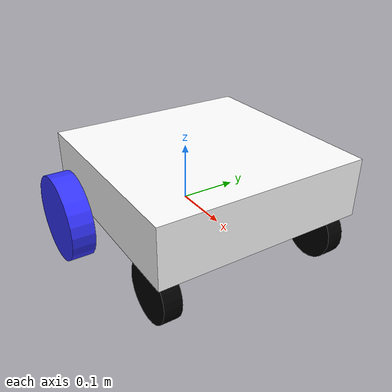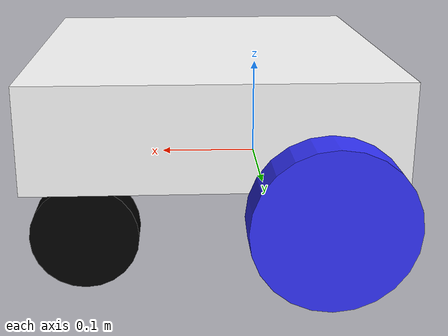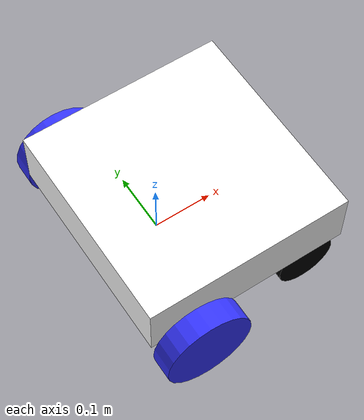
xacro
<?xml version="1.0"?>
<robot xmlns:xacro="http://www.ros.org/wiki/xacro" name="robot">

    <xacro:include filename="inertial_macros.xacro"/>

    <!-- Define materials -->
    <material name="white">
        <color rgba="1 1 1 1"/>
    </material>

    <material name="orange">
        <color rgba="1 0.3 0.1 1"/>
    </material>

    <material name="blue">
        <color rgba="0.2 0.2 1 1"/>
    </material>

    <material name="black">
        <color rgba="0 0 0 1"/>
    </material>

    <!-- BASE LINK -->
    <link name="base_link">
    </link>

    <!-- CHASSIS LINK -->
    <joint name="chassis_joint" type="fixed">
        <parent link="base_link"/>
        <child link="chassis"/>
        <origin xyz="-0.1 0 0"/>
    </joint>

    <link name="chassis">
        <visual>
            <origin xyz="0.15 0 0.07"/>
            <geometry>
                <box size="0.35 0.36 0.1"/>
            </geometry>
            <material name="white"/>
        </visual>
        <collision>
            <origin xyz="0.15 0 0.07"/>
            <geometry>
                <box size="0.35 0.36 0.1"/>
            </geometry>
        </collision>
        <xacro:inertial_box mass="0.5" x="0.35" y="0.36" z="0.1">
            <origin xyz="0.15 0 0.07" rpy="0 0 0"/>
        </xacro:inertial_box>
    </link>

    <gazebo reference="chassis">
        <material>Gazebo/White</material>
    </gazebo>

    <!-- LEFT WHEEL LINK -->
    <joint name="left_wheel_joint" type="continuous">
        <parent link="base_link"/>
        <child link="left_wheel"/>
        <origin xyz="-0.05 0.205 0" rpy="-${pi/2} 0 0"/>
        <axis xyz="0 0 1"/>
    </joint>

    <link name="left_wheel">
        <visual>
            <geometry>
                <cylinder radius="0.075" length="0.04"/>
            </geometry>
            <material name="blue"/>
        </visual>
        <collision>
            <geometry>
                <cylinder radius="0.075" length="0.04"/>
            </geometry>
        </collision>
        <xacro:inertial_cylinder mass="0.1" radius="0.075" length="0.04">
            <origin xyz="0 0 0" rpy="0 0 0"/>
        </xacro:inertial_cylinder>
    </link>

    <gazebo reference="left_wheel">
        <material>Gazebo/Blue</material>
    </gazebo>

    <!-- RIGHT WHEEL LINK -->
    <joint name="right_wheel_joint" type="continuous">
        <parent link="base_link"/>
        <child link="right_wheel"/>
        <origin xyz="-0.05 -0.205 0" rpy="-${pi/2} 0 0"/>
        <axis xyz="0 0 -1"/>
    </joint>

    <link name="right_wheel">
        <visual>
            <geometry>
                <cylinder radius="0.075" length="0.04"/>
            </geometry>
            <material name="blue"/>
        </visual>
        <collision>
            <geometry>
                <cylinder radius="0.075" length="0.04"/>
            </geometry>
        </collision>
        <xacro:inertial_cylinder mass="0.1" radius="0.075" length="0.04">
            <origin xyz="0 0 0" rpy="0 0 0"/>
        </xacro:inertial_cylinder>
    </link>

    <gazebo reference="right_wheel">
        <material>Gazebo/Blue</material>
    </gazebo>

    <!-- CASTER WHEEL LEFT LINK -->
    <joint name="caster_left_wheel_joint" type="fixed">
        <parent link="base_link"/>
        <child link="caster_left_wheel"/>
        <origin xyz="0.17 0.155 -0.025" rpy="-${pi/2} 0 0"/>
        <axis xyz="0 0 1"/>
    </joint>

    <link name="caster_left_wheel">
        <visual>
            <geometry>
                <cylinder radius="0.05" length="0.03"/>
            </geometry>
            <material name="black"/>
        </visual>
        <collision>
            <geometry>
                <cylinder radius="0.05" length="0.03"/>
            </geometry>
        </collision>
        <xacro:inertial_cylinder mass="0.1" radius="0.05" length="0.03">
            <origin xyz="0 0 0" rpy="0 0 0"/>
        </xacro:inertial_cylinder>
    </link>

    <gazebo reference="caster_left_wheel">
        <material>Gazebo/Black</material>
        <mu1 value="0.001"/>
        <mu2 value="0.001"/>
    </gazebo>

    <!-- CASTER WHEEL RIGHT LINK -->
    <joint name="caster_right_wheel_joint" type="fixed">
        <parent link="base_link"/>
        <child link="caster_right_wheel"/>
        <origin xyz="0.17 -0.155 -0.025" rpy="-${pi/2} 0 0"/>
        <axis xyz="0 0 -1"/>
    </joint>

    <link name="caster_right_wheel">
        <visual>
            <geometry>
                <cylinder radius="0.05" length="0.03"/>
            </geometry>
            <material name="black"/>
        </visual>
        <collision>
            <geometry>
                <cylinder radius="0.05" length="0.03"/>
            </geometry>
        </collision>
        <xacro:inertial_cylinder mass="0.1" radius="0.05" length="0.03">
            <origin xyz="0 0 0" rpy="0 0 0"/>
        </xacro:inertial_cylinder>
    </link>

    <gazebo reference="caster_right_wheel">
        <material>Gazebo/Black</material>
        <mu1 value="0.001"/>
        <mu2 value="0.001"/>
    </gazebo>

</robot>
